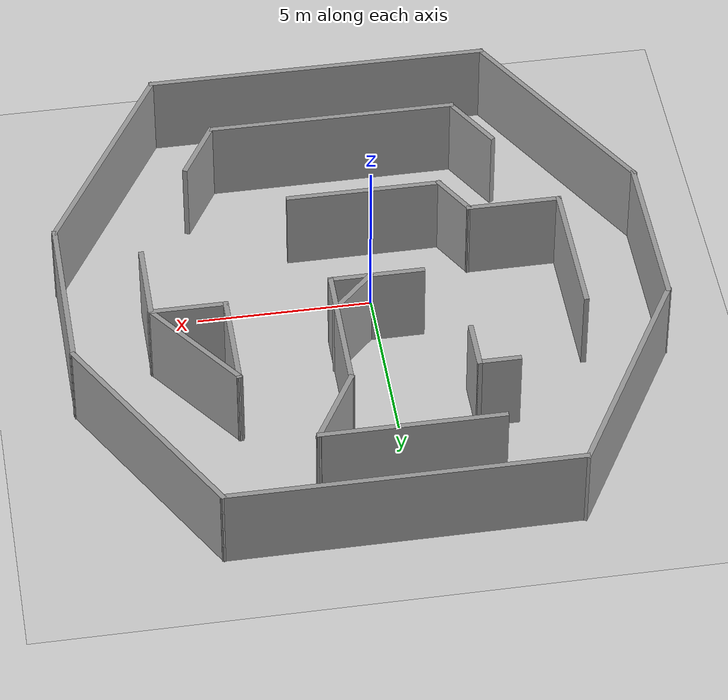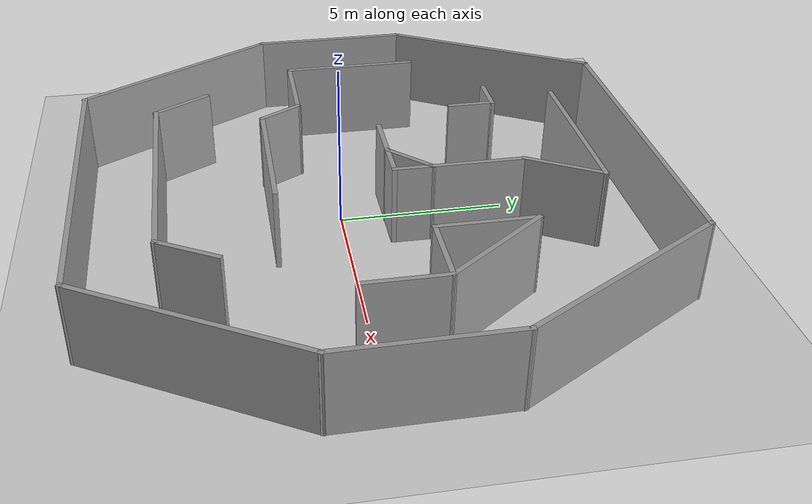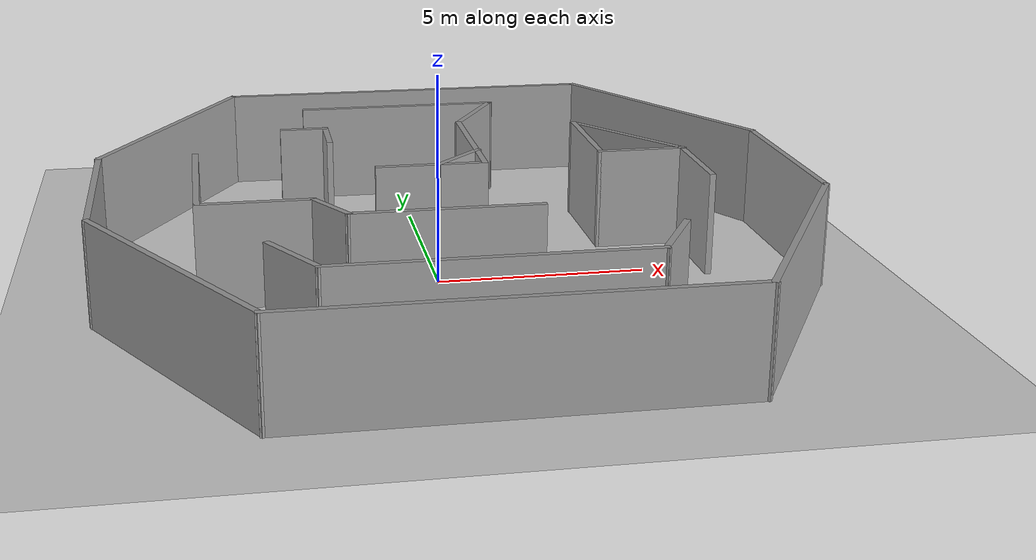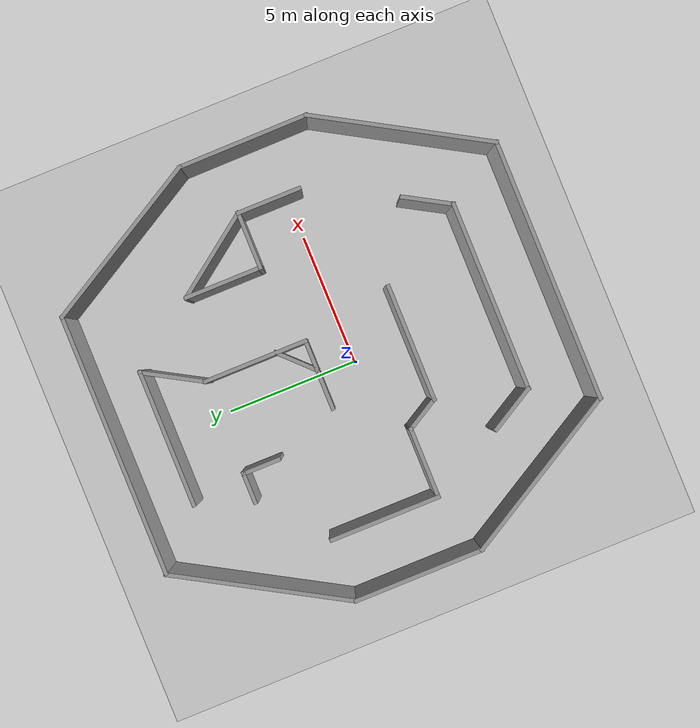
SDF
<sdf version="1.7">
 <world name="default">
  <light name="sun" type="directional">
   <pose>0 0 10 0 -0 0</pose>
   <diffuse>0.8 0.8 0.8 1</diffuse>
   <specular>0.2 0.2 0.2 1</specular>
   <attenuation>
    <range>1000</range>
    <constant>0.9</constant>
    <linear>0.01</linear>
    <quadratic>0.001</quadratic>
   </attenuation>
   <direction>-0.5 0.1 -0.9</direction>
   <spot><inner_angle>0</inner_angle><outer_angle>0</outer_angle><falloff>0</falloff></spot>
  </light>
  <model name="ground_plane">
   <static>1</static>
   <link name="link">
    <collision name="collision">
     <geometry><plane><normal>0 0 1</normal><size>100 100</size></plane></geometry>
     <surface><friction><ode><mu>100</mu><mu2>50</mu2></ode></friction></surface>
    </collision>
    <visual name="visual">
     <cast_shadows>0</cast_shadows>
     <geometry><plane><normal>0 0 1</normal><size>100 100</size></plane></geometry>
     <material>
      <script><uri>file://media/materials/scripts/gazebo.material</uri><name>Gazebo/Grey</name></script>
     </material>
    </visual>
   </link>
  </model>
  <gravity>0 0 -9.8</gravity>
  <magnetic_field>6e-06 2.3e-05 -4.2e-05</magnetic_field>
  <atmosphere type="adiabatic"/>
  <physics type="ode">
   <max_step_size>0.001</max_step_size>
   <real_time_factor>1</real_time_factor>
   <real_time_update_rate>1000</real_time_update_rate>
  </physics>
  <scene><ambient>0.4 0.4 0.4 1</ambient><background>0.7 0.7 0.7 1</background><shadows>1</shadows></scene>
  <audio><device>default</device></audio>
  <spherical_coordinates>
   <surface_model>EARTH_WGS84</surface_model>
   <latitude_deg>0</latitude_deg>
   <longitude_deg>0</longitude_deg>
   <elevation>0</elevation>
   <heading_deg>0</heading_deg>
  </spherical_coordinates>
  <model name="maze_final">
   <pose>0.45754 0.764614 0 0 -0 0</pose>
   <link name="Wall_10">
    <collision name="Wall_10_Collision">
     <geometry><box><size>6.94531 0.15 2.5</size></box></geometry>
     <pose>0 0 1.25 0 -0 0</pose>
    </collision>
    <visual name="Wall_10_Visual">
     <pose>0 0 1.25 0 -0 0</pose>
     <geometry><box><size>6.94531 0.15 2.5</size></box></geometry>
     <material>
      <script><uri>file://media/materials/scripts/gazebo.material</uri><name>Gazebo/Grey</name></script>
      <ambient>1 1 1 1</ambient>
     </material>
     <meta><layer>0</layer></meta>
    </visual>
    <pose>6.63846 5.39143 0 0 -0 -1.04986</pose>
   </link>
   <link name="Wall_13">
    <collision name="Wall_13_Collision">
     <geometry><box><size>7 0.15 2.5</size></box></geometry>
     <pose>0 0 1.25 0 -0 0</pose>
    </collision>
    <visual name="Wall_13_Visual">
     <pose>0 0 1.25 0 -0 0</pose>
     <geometry><box><size>7 0.15 2.5</size></box></geometry>
     <material>
      <script><uri>file://media/materials/scripts/gazebo.material</uri><name>Gazebo/Grey</name></script>
      <ambient>1 1 1 1</ambient>
     </material>
     <meta><layer>0</layer></meta>
    </visual>
    <pose>6.63745 -5.39712 0 0 -0 -2.09794</pose>
   </link>
   <link name="Wall_19">
    <collision name="Wall_19_Collision">
     <geometry><box><size>10 0.15 2.5</size></box></geometry>
     <pose>0 0 1.25 0 -0 0</pose>
    </collision>
    <visual name="Wall_19_Visual">
     <pose>0 0 1.25 0 -0 0</pose>
     <geometry><box><size>10 0.15 2.5</size></box></geometry>
     <material>
      <script><uri>file://media/materials/scripts/gazebo.material</uri><name>Gazebo/Grey</name></script>
      <ambient>1 1 1 1</ambient>
     </material>
     <meta><layer>0</layer></meta>
    </visual>
    <pose>-0.010556 -8.35716 0 0 -0 3.14159</pose>
   </link>
   <link name="Wall_2">
    <collision name="Wall_2_Collision">
     <geometry><box><size>10 0.15 2.5</size></box></geometry>
     <pose>0 0 1.25 0 -0 0</pose>
    </collision>
    <visual name="Wall_2_Visual">
     <pose>0 0 1.25 0 -0 0</pose>
     <geometry><box><size>10 0.15 2.5</size></box></geometry>
     <material>
      <script><uri>file://media/materials/scripts/gazebo.material</uri><name>Gazebo/Grey</name></script>
      <ambient>1 1 1 1</ambient>
     </material>
     <meta><layer>0</layer></meta>
    </visual>
    <pose>0.022351 8.33819 0 0 -0 4e-05</pose>
   </link>
   <link name="Wall_21">
    <collision name="Wall_21_Collision">
     <geometry><box><size>7 0.15 2.5</size></box></geometry>
     <pose>0 0 1.25 0 -0 0</pose>
    </collision>
    <visual name="Wall_21_Visual">
     <pose>0 0 1.25 0 -0 0</pose>
     <geometry><box><size>7 0.15 2.5</size></box></geometry>
     <material>
      <script><uri>file://media/materials/scripts/gazebo.material</uri><name>Gazebo/Grey</name></script>
      <ambient>1 1 1 1</ambient>
     </material>
     <meta><layer>0</layer></meta>
    </visual>
    <pose>-6.64806 -5.39103 0 0 -0 2.0944</pose>
   </link>
   <link name="Wall_23">
    <collision name="Wall_23_Collision">
     <geometry><box><size>5 0.15 2.5</size></box></geometry>
     <pose>0 0 1.25 0 -0 0</pose>
    </collision>
    <visual name="Wall_23_Visual">
     <pose>0 0 1.25 0 -0 0</pose>
     <geometry><box><size>5 0.15 2.5</size></box></geometry>
     <material>
      <script><uri>file://media/materials/scripts/gazebo.material</uri><name>Gazebo/Grey</name></script>
      <ambient>1 1 1 1</ambient>
     </material>
     <meta><layer>0</layer></meta>
    </visual>
    <pose>-8.36056 0.00011 0 0 -0 1.5708</pose>
   </link>
   <link name="Wall_26">
    <collision name="Wall_26_Collision">
     <geometry><box><size>6.99971 0.15 2.5</size></box></geometry>
     <pose>0 0 1.25 0 -0 0</pose>
    </collision>
    <visual name="Wall_26_Visual">
     <pose>0 0 1.25 0 -0 0</pose>
     <geometry><box><size>6.99971 0.15 2.5</size></box></geometry>
     <material>
      <script><uri>file://media/materials/scripts/gazebo.material</uri><name>Gazebo/Grey</name></script>
      <ambient>1 1 1 1</ambient>
     </material>
     <meta><layer>0</layer></meta>
    </visual>
    <pose>-6.64806 5.39125 0 0 -0 1.0472</pose>
   </link>
   <link name="Wall_28">
    <collision name="Wall_28_Collision">
     <geometry><box><size>5.03164 0.15 2.5</size></box></geometry>
     <pose>0 0 1.25 0 -0 0</pose>
    </collision>
    <visual name="Wall_28_Visual">
     <pose>0 0 1.25 0 -0 0</pose>
     <geometry><box><size>5.03164 0.15 2.5</size></box></geometry>
     <material>
      <script><uri>file://media/materials/scripts/gazebo.material</uri><name>Gazebo/Grey</name></script>
      <ambient>1 1 1 1</ambient>
     </material>
     <meta><layer>0</layer></meta>
    </visual>
    <pose>8.34496 0.003697 0 0 -0 -1.56445</pose>
   </link>
   <link name="Wall_31">
    <collision name="Wall_31_Collision">
     <geometry><box><size>2 0.15 2.5</size></box></geometry>
     <pose>0 0 1.25 0 -0 0</pose>
    </collision>
    <visual name="Wall_31_Visual">
     <pose>0 0 1.25 0 -0 0</pose>
     <geometry><box><size>2 0.15 2.5</size></box></geometry>
     <material>
      <script><uri>file://media/materials/scripts/gazebo.material</uri><name>Gazebo/Grey</name></script>
      <ambient>1 1 1 1</ambient>
     </material>
     <meta><layer>0</layer></meta>
    </visual>
    <pose>-4.1201 -5.30932 0 0 -0 2.0944</pose>
   </link>
   <link name="Wall_33">
    <collision name="Wall_33_Collision">
     <geometry><box><size>7.25 0.15 2.5</size></box></geometry>
     <pose>0 0 1.25 0 -0 0</pose>
    </collision>
    <visual name="Wall_33_Visual">
     <pose>0 0 1.25 0 -0 0</pose>
     <geometry><box><size>7.25 0.15 2.5</size></box></geometry>
     <material>
      <script><uri>file://media/materials/scripts/gazebo.material</uri><name>Gazebo/Grey</name></script>
      <ambient>1 1 1 1</ambient>
     </material>
     <meta><layer>0</layer></meta>
    </visual>
    <pose>-0.107596 -6.11039 0 0 -0 0</pose>
   </link>
   <link name="Wall_34">
    <collision name="Wall_34_Collision">
     <geometry><box><size>2 0.15 2.5</size></box></geometry>
     <pose>0 0 1.25 0 -0 0</pose>
    </collision>
    <visual name="Wall_34_Visual">
     <pose>0 0 1.25 0 -0 0</pose>
     <geometry><box><size>2 0.15 2.5</size></box></geometry>
     <material>
      <script><uri>file://media/materials/scripts/gazebo.material</uri><name>Gazebo/Grey</name></script>
      <ambient>1 1 1 1</ambient>
     </material>
     <meta><layer>0</layer></meta>
    </visual>
    <pose>3.9049 -5.30932 0 0 -0 1.0472</pose>
   </link>
   <link name="Wall_36">
    <collision name="Wall_36_Collision">
     <geometry><box><size>4.25 0.15 2.5</size></box></geometry>
     <pose>0 0 1.25 0 -0 0</pose>
    </collision>
    <visual name="Wall_36_Visual">
     <pose>0 0 1.25 0 -0 0</pose>
     <geometry><box><size>4.25 0.15 2.5</size></box></geometry>
     <material>
      <script><uri>file://media/materials/scripts/gazebo.material</uri><name>Gazebo/Grey</name></script>
      <ambient>1 1 1 1</ambient>
     </material>
     <meta><layer>0</layer></meta>
    </visual>
    <pose>-6.02769 0.363614 0 0 -0 -1.5708</pose>
   </link>
   <link name="Wall_37">
    <collision name="Wall_37_Collision">
     <geometry><box><size>2.75 0.15 2.5</size></box></geometry>
     <pose>0 0 1.25 0 -0 0</pose>
    </collision>
    <visual name="Wall_37_Visual">
     <pose>0 0 1.25 0 -0 0</pose>
     <geometry><box><size>2.75 0.15 2.5</size></box></geometry>
     <material>
      <script><uri>file://media/materials/scripts/gazebo.material</uri><name>Gazebo/Grey</name></script>
      <ambient>1 1 1 1</ambient>
     </material>
     <meta><layer>0</layer></meta>
    </visual>
    <pose>-4.72769 -1.68639 0 0 -0 0</pose>
   </link>
   <link name="Wall_38">
    <collision name="Wall_38_Collision">
     <geometry><box><size>1.5 0.15 2.5</size></box></geometry>
     <pose>0 0 1.25 0 -0 0</pose>
    </collision>
    <visual name="Wall_38_Visual">
     <pose>0 0 1.25 0 -0 0</pose>
     <geometry><box><size>1.5 0.15 2.5</size></box></geometry>
     <material>
      <script><uri>file://media/materials/scripts/gazebo.material</uri><name>Gazebo/Grey</name></script>
      <ambient>1 1 1 1</ambient>
     </material>
     <meta><layer>0</layer></meta>
    </visual>
    <pose>-3.09019 -2.27095 0 0 -0 -1.0472</pose>
   </link>
   <link name="Wall_39">
    <collision name="Wall_39_Collision">
     <geometry><box><size>4.5 0.15 2.5</size></box></geometry>
     <pose>0 0 1.25 0 -0 0</pose>
    </collision>
    <visual name="Wall_39_Visual">
     <pose>0 0 1.25 0 -0 0</pose>
     <geometry><box><size>4.5 0.15 2.5</size></box></geometry>
     <material>
      <script><uri>file://media/materials/scripts/gazebo.material</uri><name>Gazebo/Grey</name></script>
      <ambient>1 1 1 1</ambient>
     </material>
     <meta><layer>0</layer></meta>
    </visual>
    <pose>-0.577686 -2.85552 0 0 -0 0</pose>
   </link>
   <link name="Wall_41">
    <collision name="Wall_41_Collision">
     <geometry><box><size>2.5 0.15 2.5</size></box></geometry>
     <pose>0 0 1.25 0 -0 0</pose>
    </collision>
    <visual name="Wall_41_Visual">
     <pose>0 0 1.25 0 -0 0</pose>
     <geometry><box><size>2.5 0.15 2.5</size></box></geometry>
     <material>
      <script><uri>file://media/materials/scripts/gazebo.material</uri><name>Gazebo/Grey</name></script>
      <ambient>1 1 1 1</ambient>
     </material>
     <meta><layer>0</layer></meta>
    </visual>
    <pose>6.03067 -0.050382 0 0 -0 -1.5708</pose>
   </link>
   <link name="Wall_43">
    <collision name="Wall_43_Collision">
     <geometry><box><size>2.25 0.15 2.5</size></box></geometry>
     <pose>0 0 1.25 0 -0 0</pose>
    </collision>
    <visual name="Wall_43_Visual">
     <pose>0 0 1.25 0 -0 0</pose>
     <geometry><box><size>2.25 0.15 2.5</size></box></geometry>
     <material>
      <script><uri>file://media/materials/scripts/gazebo.material</uri><name>Gazebo/Grey</name></script>
      <ambient>1 1 1 1</ambient>
     </material>
     <meta><layer>0</layer></meta>
    </visual>
    <pose>4.98067 1.12462 0 0 -0 3.14159</pose>
   </link>
   <link name="Wall_44">
    <collision name="Wall_44_Collision">
     <geometry><box><size>3 0.15 2.5</size></box></geometry>
     <pose>0 0 1.25 0 -0 0</pose>
    </collision>
    <visual name="Wall_44_Visual">
     <pose>0 0 1.25 0 -0 0</pose>
     <geometry><box><size>3 0.15 2.5</size></box></geometry>
     <material>
      <script><uri>file://media/materials/scripts/gazebo.material</uri><name>Gazebo/Grey</name></script>
      <ambient>1 1 1 1</ambient>
     </material>
     <meta><layer>0</layer></meta>
    </visual>
    <pose>3.93067 2.54962 0 0 -0 1.5708</pose>
   </link>
   <link name="Wall_45">
    <collision name="Wall_45_Collision">
     <geometry><box><size>3.69013 0.15 2.5</size></box></geometry>
     <pose>0 0 1.25 0 -0 0</pose>
    </collision>
    <visual name="Wall_45_Visual">
     <pose>0 0 1.25 0 -0 0</pose>
     <geometry><box><size>3.69013 0.15 2.5</size></box></geometry>
     <material>
      <script><uri>file://media/materials/scripts/gazebo.material</uri><name>Gazebo/Grey</name></script>
      <ambient>1 1 1 1</ambient>
     </material>
     <meta><layer>0</layer></meta>
    </visual>
    <pose>4.98067 2.54962 0 0 -0 -0.93577</pose>
   </link>
   <link name="Wall_47">
    <collision name="Wall_47_Collision">
     <geometry><box><size>5.25 0.15 2.5</size></box></geometry>
     <pose>0 0 1.25 0 -0 0</pose>
    </collision>
    <visual name="Wall_47_Visual">
     <pose>0 0 1.25 0 -0 0</pose>
     <geometry><box><size>5.25 0.15 2.5</size></box></geometry>
     <material>
      <script><uri>file://media/materials/scripts/gazebo.material</uri><name>Gazebo/Grey</name></script>
      <ambient>1 1 1 1</ambient>
     </material>
     <meta><layer>0</layer></meta>
    </visual>
    <pose>-0.468229 6.50037 0 0 -0 0</pose>
   </link>
   <link name="Wall_48">
    <collision name="Wall_48_Collision">
     <geometry><box><size>2.5 0.15 2.5</size></box></geometry>
     <pose>0 0 1.25 0 -0 0</pose>
    </collision>
    <visual name="Wall_48_Visual">
     <pose>0 0 1.25 0 -0 0</pose>
     <geometry><box><size>2.5 0.15 2.5</size></box></geometry>
     <material>
      <script><uri>file://media/materials/scripts/gazebo.material</uri><name>Gazebo/Grey</name></script>
      <ambient>1 1 1 1</ambient>
     </material>
     <meta><layer>0</layer></meta>
    </visual>
    <pose>1.49427 5.48278 0 0 -0 -2.0944</pose>
   </link>
   <link name="Wall_49">
    <collision name="Wall_49_Collision">
     <geometry><box><size>4 0.15 2.5</size></box></geometry>
     <pose>0 0 1.25 0 -0 0</pose>
    </collision>
    <visual name="Wall_49_Visual">
     <pose>0 0 1.25 0 -0 0</pose>
     <geometry><box><size>4 0.15 2.5</size></box></geometry>
     <material>
      <script><uri>file://media/materials/scripts/gazebo.material</uri><name>Gazebo/Grey</name></script>
      <ambient>1 1 1 1</ambient>
     </material>
     <meta><layer>0</layer></meta>
    </visual>
    <pose>0.906771 2.54021 0 0 -0 -1.5708</pose>
   </link>
   <link name="Wall_50">
    <collision name="Wall_50_Collision">
     <geometry><box><size>2.75 0.15 2.5</size></box></geometry>
     <pose>0 0 1.25 0 -0 0</pose>
    </collision>
    <visual name="Wall_50_Visual">
     <pose>0 0 1.25 0 -0 0</pose>
     <geometry><box><size>2.75 0.15 2.5</size></box></geometry>
     <material>
      <script><uri>file://media/materials/scripts/gazebo.material</uri><name>Gazebo/Grey</name></script>
      <ambient>1 1 1 1</ambient>
     </material>
     <meta><layer>0</layer></meta>
    </visual>
    <pose>-0.393229 0.615206 0 0 -0 3.14159</pose>
   </link>
   <link name="Wall_54">
    <collision name="Wall_54_Collision">
     <geometry><box><size>1.75 0.15 2.5</size></box></geometry>
     <pose>0 0 1.25 0 -0 0</pose>
    </collision>
    <visual name="Wall_54_Visual">
     <pose>0 0 1.25 0 -0 0</pose>
     <geometry><box><size>1.75 0.15 2.5</size></box></geometry>
     <material>
      <script><uri>file://media/materials/scripts/gazebo.material</uri><name>Gazebo/Grey</name></script>
      <ambient>1 1 1 1</ambient>
     </material>
     <meta><layer>0</layer></meta>
    </visual>
    <pose>0.356807 1.18845 0 0 -0 -2.35619</pose>
   </link>
   <link name="Wall_56">
    <collision name="Wall_56_Collision">
     <geometry><box><size>1.25 0.15 2.5</size></box></geometry>
     <pose>0 0 1.25 0 -0 0</pose>
    </collision>
    <visual name="Wall_56_Visual">
     <pose>0 0 1.25 0 -0 0</pose>
     <geometry><box><size>1.25 0.15 2.5</size></box></geometry>
     <material>
      <script><uri>file://media/materials/scripts/gazebo.material</uri><name>Gazebo/Grey</name></script>
      <ambient>1 1 1 1</ambient>
     </material>
     <meta><layer>0</layer></meta>
    </visual>
    <pose>-3.2023 4.438 0 0 -0 0</pose>
   </link>
   <link name="Wall_57">
    <collision name="Wall_57_Collision">
     <geometry><box><size>1.5 0.15 2.5</size></box></geometry>
     <pose>0 0 1.25 0 -0 0</pose>
    </collision>
    <visual name="Wall_57_Visual">
     <pose>0 0 1.25 0 -0 0</pose>
     <geometry><box><size>1.5 0.15 2.5</size></box></geometry>
     <material>
      <script><uri>file://media/materials/scripts/gazebo.material</uri><name>Gazebo/Grey</name></script>
      <ambient>1 1 1 1</ambient>
     </material>
     <meta><layer>0</layer></meta>
    </visual>
    <pose>-2.6523 3.763 0 0 -0 -1.5708</pose>
   </link>
   <static>1</static>
  </model>
 </world>
</sdf>
